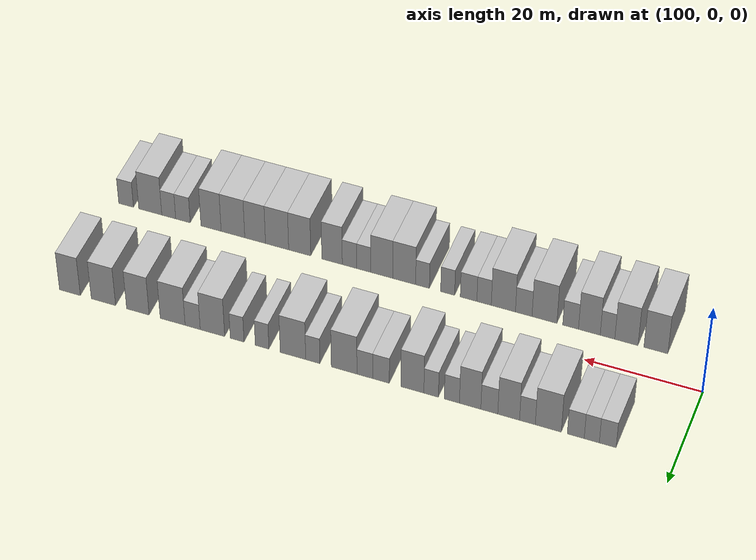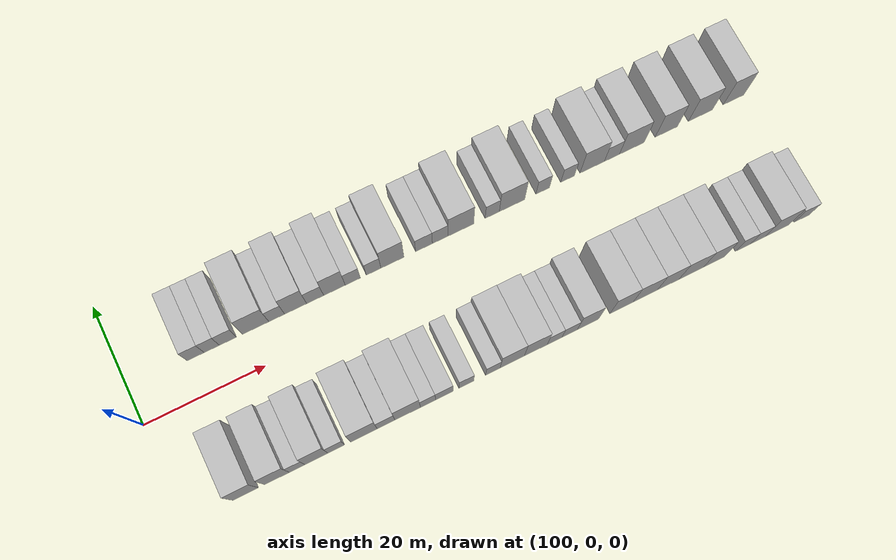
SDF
<sdf version="1.6">
 <world name="default">
  <model name="building_26">
   <static>1</static>
   <pose>111.0594 11.0000 0 0.000000 0.000000 1.570796</pose>
   <link name="link">
    <pose>0 0 3.00 0 0 0</pose>
    <collision name="collision"><geometry><box><size>10.0000 2.7994 6.0000</size></box></geometry></collision>
    <visual name="visual">
     <cast_shadows>0</cast_shadows>
     <geometry><box><size>10.0000 2.7994 6.0000</size></box></geometry>
     <material>
      <script>
       <uri>model://HANNAS_wall/materials/scripts</uri>
       <uri>model://HANNAS_wall/materials/textures</uri>
       <name>vrc/HANNAS_wall</name>
      </script>
     </material>
    </visual>
   </link>
  </model>
  <model name="building_27">
   <static>1</static>
   <pose>113.7172 11.0000 0 0.000000 0.000000 1.570796</pose>
   <link name="link">
    <pose>0 0 3.00 0 0 0</pose>
    <collision name="collision"><geometry><box><size>10.0000 2.5162 6.0000</size></box></geometry></collision>
    <visual name="visual">
     <cast_shadows>0</cast_shadows>
     <geometry><box><size>10.0000 2.5162 6.0000</size></box></geometry>
     <material>
      <script>
       <uri>model://HANNAS_wall/materials/scripts</uri>
       <uri>model://HANNAS_wall/materials/textures</uri>
       <name>vrc/HANNAS_wall</name>
      </script>
     </material>
    </visual>
   </link>
  </model>
  <model name="building_28">
   <static>1</static>
   <pose>116.3857 11.0000 0 0.000000 0.000000 1.570796</pose>
   <link name="link">
    <pose>0 0 3.00 0 0 0</pose>
    <collision name="collision"><geometry><box><size>10.0000 2.8208 6.0000</size></box></geometry></collision>
    <visual name="visual">
     <cast_shadows>0</cast_shadows>
     <geometry><box><size>10.0000 2.8208 6.0000</size></box></geometry>
     <material>
      <script>
       <uri>model://HANNAS_wall/materials/scripts</uri>
       <uri>model://HANNAS_wall/materials/textures</uri>
       <name>vrc/HANNAS_wall</name>
      </script>
     </material>
    </visual>
   </link>
  </model>
  <model name="building_29">
   <static>1</static>
   <pose>120.9853 11.0000 0 0.000000 0.000000 1.570796</pose>
   <link name="link">
    <pose>0 0 4.50 0 0 0</pose>
    <collision name="collision"><geometry><box><size>10.0000 4.3785 9.0000</size></box></geometry></collision>
    <visual name="visual">
     <cast_shadows>0</cast_shadows>
     <geometry><box><size>10.0000 4.3785 9.0000</size></box></geometry>
     <material>
      <script>
       <uri>model://HANNAS_wall/materials/scripts</uri>
       <uri>model://HANNAS_wall/materials/textures</uri>
       <name>vrc/HANNAS_wall</name>
      </script>
     </material>
    </visual>
   </link>
  </model>
  <model name="building_30">
   <static>1</static>
   <pose>124.4999 11.0000 0 0.000000 0.000000 1.570796</pose>
   <link name="link">
    <pose>0 0 3.00 0 0 0</pose>
    <collision name="collision"><geometry><box><size>10.0000 2.6507 6.0000</size></box></geometry></collision>
    <visual name="visual">
     <cast_shadows>0</cast_shadows>
     <geometry><box><size>10.0000 2.6507 6.0000</size></box></geometry>
     <material>
      <script>
       <uri>model://HANNAS_wall/materials/scripts</uri>
       <uri>model://HANNAS_wall/materials/textures</uri>
       <name>vrc/HANNAS_wall</name>
      </script>
     </material>
    </visual>
   </link>
  </model>
  <model name="building_31">
   <static>1</static>
   <pose>127.6629 11.0000 0 0.000000 0.000000 1.570796</pose>
   <link name="link">
    <pose>0 0 4.50 0 0 0</pose>
    <collision name="collision"><geometry><box><size>10.0000 3.6754 9.0000</size></box></geometry></collision>
    <visual name="visual">
     <cast_shadows>0</cast_shadows>
     <geometry><box><size>10.0000 3.6754 9.0000</size></box></geometry>
     <material>
      <script>
       <uri>model://HANNAS_wall/materials/scripts</uri>
       <uri>model://HANNAS_wall/materials/textures</uri>
       <name>vrc/HANNAS_wall</name>
      </script>
     </material>
    </visual>
   </link>
  </model>
  <model name="building_32">
   <static>1</static>
   <pose>130.9396 11.0000 0 0.000000 0.000000 1.570796</pose>
   <link name="link">
    <pose>0 0 3.00 0 0 0</pose>
    <collision name="collision"><geometry><box><size>10.0000 2.8780 6.0000</size></box></geometry></collision>
    <visual name="visual">
     <cast_shadows>0</cast_shadows>
     <geometry><box><size>10.0000 2.8780 6.0000</size></box></geometry>
     <material>
      <script>
       <uri>model://HANNAS_wall/materials/scripts</uri>
       <uri>model://HANNAS_wall/materials/textures</uri>
       <name>vrc/HANNAS_wall</name>
      </script>
     </material>
    </visual>
   </link>
  </model>
  <model name="building_33">
   <static>1</static>
   <pose>134.2009 11.0000 0 0.000000 0.000000 1.570796</pose>
   <link name="link">
    <pose>0 0 4.50 0 0 0</pose>
    <collision name="collision"><geometry><box><size>10.0000 3.6445 9.0000</size></box></geometry></collision>
    <visual name="visual">
     <cast_shadows>0</cast_shadows>
     <geometry><box><size>10.0000 3.6445 9.0000</size></box></geometry>
     <material>
      <script>
       <uri>model://HANNAS_wall/materials/scripts</uri>
       <uri>model://HANNAS_wall/materials/textures</uri>
       <name>vrc/HANNAS_wall</name>
      </script>
     </material>
    </visual>
   </link>
  </model>
  <model name="building_34">
   <static>1</static>
   <pose>137.3183 11.0000 0 0.000000 0.000000 1.570796</pose>
   <link name="link">
    <pose>0 0 3.00 0 0 0</pose>
    <collision name="collision"><geometry><box><size>10.0000 2.5903 6.0000</size></box></geometry></collision>
    <visual name="visual">
     <cast_shadows>0</cast_shadows>
     <geometry><box><size>10.0000 2.5903 6.0000</size></box></geometry>
     <material>
      <script>
       <uri>model://HANNAS_wall/materials/scripts</uri>
       <uri>model://HANNAS_wall/materials/textures</uri>
       <name>vrc/HANNAS_wall</name>
      </script>
     </material>
    </visual>
   </link>
  </model>
  <model name="building_35">
   <static>1</static>
   <pose>140.8595 11.0000 0 0.000000 0.000000 1.570796</pose>
   <link name="link">
    <pose>0 0 3.00 0 0 0</pose>
    <collision name="collision"><geometry><box><size>10.0000 2.4921 6.0000</size></box></geometry></collision>
    <visual name="visual">
     <cast_shadows>0</cast_shadows>
     <geometry><box><size>10.0000 2.4921 6.0000</size></box></geometry>
     <material>
      <script>
       <uri>model://HANNAS_wall/materials/scripts</uri>
       <uri>model://HANNAS_wall/materials/textures</uri>
       <name>vrc/HANNAS_wall</name>
      </script>
     </material>
    </visual>
   </link>
  </model>
  <model name="building_36">
   <static>1</static>
   <pose>144.0839 11.0000 0 0.000000 0.000000 1.570796</pose>
   <link name="link">
    <pose>0 0 4.50 0 0 0</pose>
    <collision name="collision"><geometry><box><size>10.0000 3.9569 9.0000</size></box></geometry></collision>
    <visual name="visual">
     <cast_shadows>0</cast_shadows>
     <geometry><box><size>10.0000 3.9569 9.0000</size></box></geometry>
     <material>
      <script>
       <uri>model://HANNAS_wall/materials/scripts</uri>
       <uri>model://HANNAS_wall/materials/textures</uri>
       <name>vrc/HANNAS_wall</name>
      </script>
     </material>
    </visual>
   </link>
  </model>
  <model name="building_37">
   <static>1</static>
   <pose>149.5078 11.0000 0 0.000000 0.000000 1.570796</pose>
   <link name="link">
    <pose>0 0 3.00 0 0 0</pose>
    <collision name="collision"><geometry><box><size>10.0000 2.8908 6.0000</size></box></geometry></collision>
    <visual name="visual">
     <cast_shadows>0</cast_shadows>
     <geometry><box><size>10.0000 2.8908 6.0000</size></box></geometry>
     <material>
      <script>
       <uri>model://HANNAS_wall/materials/scripts</uri>
       <uri>model://HANNAS_wall/materials/textures</uri>
       <name>vrc/HANNAS_wall</name>
      </script>
     </material>
    </visual>
   </link>
  </model>
  <model name="building_38">
   <static>1</static>
   <pose>152.3108 11.0000 0 0.000000 0.000000 1.570796</pose>
   <link name="link">
    <pose>0 0 3.00 0 0 0</pose>
    <collision name="collision"><geometry><box><size>10.0000 2.7152 6.0000</size></box></geometry></collision>
    <visual name="visual">
     <cast_shadows>0</cast_shadows>
     <geometry><box><size>10.0000 2.7152 6.0000</size></box></geometry>
     <material>
      <script>
       <uri>model://HANNAS_wall/materials/scripts</uri>
       <uri>model://HANNAS_wall/materials/textures</uri>
       <name>vrc/HANNAS_wall</name>
      </script>
     </material>
    </visual>
   </link>
  </model>
  <model name="building_39">
   <static>1</static>
   <pose>155.8981 11.0000 0 0.000000 0.000000 1.570796</pose>
   <link name="link">
    <pose>0 0 4.50 0 0 0</pose>
    <collision name="collision"><geometry><box><size>10.0000 4.4595 9.0000</size></box></geometry></collision>
    <visual name="visual">
     <cast_shadows>0</cast_shadows>
     <geometry><box><size>10.0000 4.4595 9.0000</size></box></geometry>
     <material>
      <script>
       <uri>model://HANNAS_wall/materials/scripts</uri>
       <uri>model://HANNAS_wall/materials/textures</uri>
       <name>vrc/HANNAS_wall</name>
      </script>
     </material>
    </visual>
   </link>
  </model>
  <model name="building_40">
   <static>1</static>
   <pose>161.3708 11.0000 0 0.000000 0.000000 1.570796</pose>
   <link name="link">
    <pose>0 0 3.00 0 0 0</pose>
    <collision name="collision"><geometry><box><size>10.0000 2.4860 6.0000</size></box></geometry></collision>
    <visual name="visual">
     <cast_shadows>0</cast_shadows>
     <geometry><box><size>10.0000 2.4860 6.0000</size></box></geometry>
     <material>
      <script>
       <uri>model://HANNAS_wall/materials/scripts</uri>
       <uri>model://HANNAS_wall/materials/textures</uri>
       <name>vrc/HANNAS_wall</name>
      </script>
     </material>
    </visual>
   </link>
  </model>
  <model name="building_41">
   <static>1</static>
   <pose>164.8539 11.0000 0 0.000000 0.000000 1.570796</pose>
   <link name="link">
    <pose>0 0 4.50 0 0 0</pose>
    <collision name="collision"><geometry><box><size>10.0000 4.4803 9.0000</size></box></geometry></collision>
    <visual name="visual">
     <cast_shadows>0</cast_shadows>
     <geometry><box><size>10.0000 4.4803 9.0000</size></box></geometry>
     <material>
      <script>
       <uri>model://HANNAS_wall/materials/scripts</uri>
       <uri>model://HANNAS_wall/materials/textures</uri>
       <name>vrc/HANNAS_wall</name>
      </script>
     </material>
    </visual>
   </link>
  </model>
  <model name="building_42">
   <static>1</static>
   <pose>170.2980 11.0000 0 0.000000 0.000000 1.570796</pose>
   <link name="link">
    <pose>0 0 3.00 0 0 0</pose>
    <collision name="collision"><geometry><box><size>10.0000 2.4078 6.0000</size></box></geometry></collision>
    <visual name="visual">
     <cast_shadows>0</cast_shadows>
     <geometry><box><size>10.0000 2.4078 6.0000</size></box></geometry>
     <material>
      <script>
       <uri>model://HANNAS_wall/materials/scripts</uri>
       <uri>model://HANNAS_wall/materials/textures</uri>
       <name>vrc/HANNAS_wall</name>
      </script>
     </material>
    </visual>
   </link>
  </model>
  <model name="building_43">
   <static>1</static>
   <pose>174.7209 11.0000 0 0.000000 0.000000 1.570796</pose>
   <link name="link">
    <pose>0 0 3.00 0 0 0</pose>
    <collision name="collision"><geometry><box><size>10.0000 2.4381 6.0000</size></box></geometry></collision>
    <visual name="visual">
     <cast_shadows>0</cast_shadows>
     <geometry><box><size>10.0000 2.4381 6.0000</size></box></geometry>
     <material>
      <script>
       <uri>model://HANNAS_wall/materials/scripts</uri>
       <uri>model://HANNAS_wall/materials/textures</uri>
       <name>vrc/HANNAS_wall</name>
      </script>
     </material>
    </visual>
   </link>
  </model>
  <model name="building_44">
   <static>1</static>
   <pose>179.1229 11.0000 0 0.000000 0.000000 1.570796</pose>
   <link name="link">
    <pose>0 0 4.50 0 0 0</pose>
    <collision name="collision"><geometry><box><size>10.0000 4.3658 9.0000</size></box></geometry></collision>
    <visual name="visual">
     <cast_shadows>0</cast_shadows>
     <geometry><box><size>10.0000 4.3658 9.0000</size></box></geometry>
     <material>
      <script>
       <uri>model://HANNAS_wall/materials/scripts</uri>
       <uri>model://HANNAS_wall/materials/textures</uri>
       <name>vrc/HANNAS_wall</name>
      </script>
     </material>
    </visual>
   </link>
  </model>
  <model name="building_45">
   <static>1</static>
   <pose>182.6633 11.0000 0 0.000000 0.000000 1.570796</pose>
   <link name="link">
    <pose>0 0 3.00 0 0 0</pose>
    <collision name="collision"><geometry><box><size>10.0000 2.7148 6.0000</size></box></geometry></collision>
    <visual name="visual">
     <cast_shadows>0</cast_shadows>
     <geometry><box><size>10.0000 2.7148 6.0000</size></box></geometry>
     <material>
      <script>
       <uri>model://HANNAS_wall/materials/scripts</uri>
       <uri>model://HANNAS_wall/materials/textures</uri>
       <name>vrc/HANNAS_wall</name>
      </script>
     </material>
    </visual>
   </link>
  </model>
  <model name="building_46">
   <static>1</static>
   <pose>186.2597 11.0000 0 0.000000 0.000000 1.570796</pose>
   <link name="link">
    <pose>0 0 4.50 0 0 0</pose>
    <collision name="collision"><geometry><box><size>10.0000 4.4780 9.0000</size></box></geometry></collision>
    <visual name="visual">
     <cast_shadows>0</cast_shadows>
     <geometry><box><size>10.0000 4.4780 9.0000</size></box></geometry>
     <material>
      <script>
       <uri>model://HANNAS_wall/materials/scripts</uri>
       <uri>model://HANNAS_wall/materials/textures</uri>
       <name>vrc/HANNAS_wall</name>
      </script>
     </material>
    </visual>
   </link>
  </model>
  <model name="building_47">
   <static>1</static>
   <pose>192.5352 11.0000 0 0.000000 0.000000 1.570796</pose>
   <link name="link">
    <pose>0 0 4.50 0 0 0</pose>
    <collision name="collision"><geometry><box><size>10.0000 4.0730 9.0000</size></box></geometry></collision>
    <visual name="visual">
     <cast_shadows>0</cast_shadows>
     <geometry><box><size>10.0000 4.0730 9.0000</size></box></geometry>
     <material>
      <script>
       <uri>model://HANNAS_wall/materials/scripts</uri>
       <uri>model://HANNAS_wall/materials/textures</uri>
       <name>vrc/HANNAS_wall</name>
      </script>
     </material>
    </visual>
   </link>
  </model>
  <model name="building_48">
   <static>1</static>
   <pose>198.7893 11.0000 0 0.000000 0.000000 1.570796</pose>
   <link name="link">
    <pose>0 0 4.50 0 0 0</pose>
    <collision name="collision"><geometry><box><size>10.0000 4.4353 9.0000</size></box></geometry></collision>
    <visual name="visual">
     <cast_shadows>0</cast_shadows>
     <geometry><box><size>10.0000 4.4353 9.0000</size></box></geometry>
     <material>
      <script>
       <uri>model://HANNAS_wall/materials/scripts</uri>
       <uri>model://HANNAS_wall/materials/textures</uri>
       <name>vrc/HANNAS_wall</name>
      </script>
     </material>
    </visual>
   </link>
  </model>
  <model name="building_49">
   <static>1</static>
   <pose>204.9103 11.0000 0 0.000000 0.000000 1.570796</pose>
   <link name="link">
    <pose>0 0 4.50 0 0 0</pose>
    <collision name="collision"><geometry><box><size>10.0000 3.8065 9.0000</size></box></geometry></collision>
    <visual name="visual">
     <cast_shadows>0</cast_shadows>
     <geometry><box><size>10.0000 3.8065 9.0000</size></box></geometry>
     <material>
      <script>
       <uri>model://HANNAS_wall/materials/scripts</uri>
       <uri>model://HANNAS_wall/materials/textures</uri>
       <name>vrc/HANNAS_wall</name>
      </script>
     </material>
    </visual>
   </link>
  </model>
  <model name="building_75">
   <static>1</static>
   <pose>109.6816 -11.0000 0 0.000000 0.000000 1.570796</pose>
   <link name="link">
    <pose>0 0 4.50 0 0 0</pose>
    <collision name="collision"><geometry><box><size>10.0000 4.0890 9.0000</size></box></geometry></collision>
    <visual name="visual">
     <cast_shadows>0</cast_shadows>
     <geometry><box><size>10.0000 4.0890 9.0000</size></box></geometry>
     <material>
      <script>
       <uri>model://HANNAS_wall/materials/scripts</uri>
       <uri>model://HANNAS_wall/materials/textures</uri>
       <name>vrc/HANNAS_wall</name>
      </script>
     </material>
    </visual>
   </link>
  </model>
  <model name="building_76">
   <static>1</static>
   <pose>114.7180 -11.0000 0 0.000000 0.000000 1.570796</pose>
   <link name="link">
    <pose>0 0 4.50 0 0 0</pose>
    <collision name="collision"><geometry><box><size>10.0000 3.9837 9.0000</size></box></geometry></collision>
    <visual name="visual">
     <cast_shadows>0</cast_shadows>
     <geometry><box><size>10.0000 3.9837 9.0000</size></box></geometry>
     <material>
      <script>
       <uri>model://HANNAS_wall/materials/scripts</uri>
       <uri>model://HANNAS_wall/materials/textures</uri>
       <name>vrc/HANNAS_wall</name>
      </script>
     </material>
    </visual>
   </link>
  </model>
  <model name="building_77">
   <static>1</static>
   <pose>117.9638 -11.0000 0 0.000000 0.000000 1.570796</pose>
   <link name="link">
    <pose>0 0 3.00 0 0 0</pose>
    <collision name="collision"><geometry><box><size>10.0000 2.5079 6.0000</size></box></geometry></collision>
    <visual name="visual">
     <cast_shadows>0</cast_shadows>
     <geometry><box><size>10.0000 2.5079 6.0000</size></box></geometry>
     <material>
      <script>
       <uri>model://HANNAS_wall/materials/scripts</uri>
       <uri>model://HANNAS_wall/materials/textures</uri>
       <name>vrc/HANNAS_wall</name>
      </script>
     </material>
    </visual>
   </link>
  </model>
  <model name="building_78">
   <static>1</static>
   <pose>121.0917 -11.0000 0 0.000000 0.000000 1.570796</pose>
   <link name="link">
    <pose>0 0 4.50 0 0 0</pose>
    <collision name="collision"><geometry><box><size>10.0000 3.7479 9.0000</size></box></geometry></collision>
    <visual name="visual">
     <cast_shadows>0</cast_shadows>
     <geometry><box><size>10.0000 3.7479 9.0000</size></box></geometry>
     <material>
      <script>
       <uri>model://HANNAS_wall/materials/scripts</uri>
       <uri>model://HANNAS_wall/materials/textures</uri>
       <name>vrc/HANNAS_wall</name>
      </script>
     </material>
    </visual>
   </link>
  </model>
  <model name="building_79">
   <static>1</static>
   <pose>124.3284 -11.0000 0 0.000000 0.000000 1.570796</pose>
   <link name="link">
    <pose>0 0 3.00 0 0 0</pose>
    <collision name="collision"><geometry><box><size>10.0000 2.7254 6.0000</size></box></geometry></collision>
    <visual name="visual">
     <cast_shadows>0</cast_shadows>
     <geometry><box><size>10.0000 2.7254 6.0000</size></box></geometry>
     <material>
      <script>
       <uri>model://HANNAS_wall/materials/scripts</uri>
       <uri>model://HANNAS_wall/materials/textures</uri>
       <name>vrc/HANNAS_wall</name>
      </script>
     </material>
    </visual>
   </link>
  </model>
  <model name="building_80">
   <static>1</static>
   <pose>128.8610 -11.0000 0 0.000000 0.000000 1.570796</pose>
   <link name="link">
    <pose>0 0 4.50 0 0 0</pose>
    <collision name="collision"><geometry><box><size>10.0000 4.3398 9.0000</size></box></geometry></collision>
    <visual name="visual">
     <cast_shadows>0</cast_shadows>
     <geometry><box><size>10.0000 4.3398 9.0000</size></box></geometry>
     <material>
      <script>
       <uri>model://HANNAS_wall/materials/scripts</uri>
       <uri>model://HANNAS_wall/materials/textures</uri>
       <name>vrc/HANNAS_wall</name>
      </script>
     </material>
    </visual>
   </link>
  </model>
  <model name="building_81">
   <static>1</static>
   <pose>132.4812 -11.0000 0 0.000000 0.000000 1.570796</pose>
   <link name="link">
    <pose>0 0 3.00 0 0 0</pose>
    <collision name="collision"><geometry><box><size>10.0000 2.9006 6.0000</size></box></geometry></collision>
    <visual name="visual">
     <cast_shadows>0</cast_shadows>
     <geometry><box><size>10.0000 2.9006 6.0000</size></box></geometry>
     <material>
      <script>
       <uri>model://HANNAS_wall/materials/scripts</uri>
       <uri>model://HANNAS_wall/materials/textures</uri>
       <name>vrc/HANNAS_wall</name>
      </script>
     </material>
    </visual>
   </link>
  </model>
  <model name="building_82">
   <static>1</static>
   <pose>136.0506 -11.0000 0 0.000000 0.000000 1.570796</pose>
   <link name="link">
    <pose>0 0 4.50 0 0 0</pose>
    <collision name="collision"><geometry><box><size>10.0000 4.2382 9.0000</size></box></geometry></collision>
    <visual name="visual">
     <cast_shadows>0</cast_shadows>
     <geometry><box><size>10.0000 4.2382 9.0000</size></box></geometry>
     <material>
      <script>
       <uri>model://HANNAS_wall/materials/scripts</uri>
       <uri>model://HANNAS_wall/materials/textures</uri>
       <name>vrc/HANNAS_wall</name>
      </script>
     </material>
    </visual>
   </link>
  </model>
  <model name="building_83">
   <static>1</static>
   <pose>139.4349 -11.0000 0 0.000000 0.000000 1.570796</pose>
   <link name="link">
    <pose>0 0 3.00 0 0 0</pose>
    <collision name="collision"><geometry><box><size>10.0000 2.5304 6.0000</size></box></geometry></collision>
    <visual name="visual">
     <cast_shadows>0</cast_shadows>
     <geometry><box><size>10.0000 2.5304 6.0000</size></box></geometry>
     <material>
      <script>
       <uri>model://HANNAS_wall/materials/scripts</uri>
       <uri>model://HANNAS_wall/materials/textures</uri>
       <name>vrc/HANNAS_wall</name>
      </script>
     </material>
    </visual>
   </link>
  </model>
  <model name="building_84">
   <static>1</static>
   <pose>142.1581 -11.0000 0 0.000000 0.000000 1.570796</pose>
   <link name="link">
    <pose>0 0 3.00 0 0 0</pose>
    <collision name="collision"><geometry><box><size>10.0000 2.9161 6.0000</size></box></geometry></collision>
    <visual name="visual">
     <cast_shadows>0</cast_shadows>
     <geometry><box><size>10.0000 2.9161 6.0000</size></box></geometry>
     <material>
      <script>
       <uri>model://HANNAS_wall/materials/scripts</uri>
       <uri>model://HANNAS_wall/materials/textures</uri>
       <name>vrc/HANNAS_wall</name>
      </script>
     </material>
    </visual>
   </link>
  </model>
  <model name="building_85">
   <static>1</static>
   <pose>145.8548 -11.0000 0 0.000000 0.000000 1.570796</pose>
   <link name="link">
    <pose>0 0 3.00 0 0 0</pose>
    <collision name="collision"><geometry><box><size>10.0000 2.4774 6.0000</size></box></geometry></collision>
    <visual name="visual">
     <cast_shadows>0</cast_shadows>
     <geometry><box><size>10.0000 2.4774 6.0000</size></box></geometry>
     <material>
      <script>
       <uri>model://HANNAS_wall/materials/scripts</uri>
       <uri>model://HANNAS_wall/materials/textures</uri>
       <name>vrc/HANNAS_wall</name>
      </script>
     </material>
    </visual>
   </link>
  </model>
  <model name="building_86">
   <static>1</static>
   <pose>150.3157 -11.0000 0 0.000000 0.000000 1.570796</pose>
   <link name="link">
    <pose>0 0 3.00 0 0 0</pose>
    <collision name="collision"><geometry><box><size>10.0000 2.4442 6.0000</size></box></geometry></collision>
    <visual name="visual">
     <cast_shadows>0</cast_shadows>
     <geometry><box><size>10.0000 2.4442 6.0000</size></box></geometry>
     <material>
      <script>
       <uri>model://HANNAS_wall/materials/scripts</uri>
       <uri>model://HANNAS_wall/materials/textures</uri>
       <name>vrc/HANNAS_wall</name>
      </script>
     </material>
    </visual>
   </link>
  </model>
  <model name="building_87">
   <static>1</static>
   <pose>153.5936 -11.0000 0 0.000000 0.000000 1.570796</pose>
   <link name="link">
    <pose>0 0 4.50 0 0 0</pose>
    <collision name="collision"><geometry><box><size>10.0000 4.1116 9.0000</size></box></geometry></collision>
    <visual name="visual">
     <cast_shadows>0</cast_shadows>
     <geometry><box><size>10.0000 4.1116 9.0000</size></box></geometry>
     <material>
      <script>
       <uri>model://HANNAS_wall/materials/scripts</uri>
       <uri>model://HANNAS_wall/materials/textures</uri>
       <name>vrc/HANNAS_wall</name>
      </script>
     </material>
    </visual>
   </link>
  </model>
  <model name="building_88">
   <static>1</static>
   <pose>157.6100 -11.0000 0 0.000000 0.000000 1.570796</pose>
   <link name="link">
    <pose>0 0 4.50 0 0 0</pose>
    <collision name="collision"><geometry><box><size>10.0000 3.9211 9.0000</size></box></geometry></collision>
    <visual name="visual">
     <cast_shadows>0</cast_shadows>
     <geometry><box><size>10.0000 3.9211 9.0000</size></box></geometry>
     <material>
      <script>
       <uri>model://HANNAS_wall/materials/scripts</uri>
       <uri>model://HANNAS_wall/materials/textures</uri>
       <name>vrc/HANNAS_wall</name>
      </script>
     </material>
    </visual>
   </link>
  </model>
  <model name="building_89">
   <static>1</static>
   <pose>160.8278 -11.0000 0 0.000000 0.000000 1.570796</pose>
   <link name="link">
    <pose>0 0 3.00 0 0 0</pose>
    <collision name="collision"><geometry><box><size>10.0000 2.5146 6.0000</size></box></geometry></collision>
    <visual name="visual">
     <cast_shadows>0</cast_shadows>
     <geometry><box><size>10.0000 2.5146 6.0000</size></box></geometry>
     <material>
      <script>
       <uri>model://HANNAS_wall/materials/scripts</uri>
       <uri>model://HANNAS_wall/materials/textures</uri>
       <name>vrc/HANNAS_wall</name>
      </script>
     </material>
    </visual>
   </link>
  </model>
  <model name="building_90">
   <static>1</static>
   <pose>163.3924 -11.0000 0 0.000000 0.000000 1.570796</pose>
   <link name="link">
    <pose>0 0 3.00 0 0 0</pose>
    <collision name="collision"><geometry><box><size>10.0000 2.6145 6.0000</size></box></geometry></collision>
    <visual name="visual">
     <cast_shadows>0</cast_shadows>
     <geometry><box><size>10.0000 2.6145 6.0000</size></box></geometry>
     <material>
      <script>
       <uri>model://HANNAS_wall/materials/scripts</uri>
       <uri>model://HANNAS_wall/materials/textures</uri>
       <name>vrc/HANNAS_wall</name>
      </script>
     </material>
    </visual>
   </link>
  </model>
  <model name="building_91">
   <static>1</static>
   <pose>166.5442 -11.0000 0 0.000000 0.000000 1.570796</pose>
   <link name="link">
    <pose>0 0 4.50 0 0 0</pose>
    <collision name="collision"><geometry><box><size>10.0000 3.6891 9.0000</size></box></geometry></collision>
    <visual name="visual">
     <cast_shadows>0</cast_shadows>
     <geometry><box><size>10.0000 3.6891 9.0000</size></box></geometry>
     <material>
      <script>
       <uri>model://HANNAS_wall/materials/scripts</uri>
       <uri>model://HANNAS_wall/materials/textures</uri>
       <name>vrc/HANNAS_wall</name>
      </script>
     </material>
    </visual>
   </link>
  </model>
  <model name="building_92">
   <static>1</static>
   <pose>172.4028 -11.0000 0 0.000000 0.000000 1.570796</pose>
   <link name="link">
    <pose>0 0 4.50 0 0 0</pose>
    <collision name="collision"><geometry><box><size>10.0000 4.0280 9.0000</size></box></geometry></collision>
    <visual name="visual">
     <cast_shadows>0</cast_shadows>
     <geometry><box><size>10.0000 4.0280 9.0000</size></box></geometry>
     <material>
      <script>
       <uri>model://HANNAS_wall/materials/scripts</uri>
       <uri>model://HANNAS_wall/materials/textures</uri>
       <name>vrc/HANNAS_wall</name>
      </script>
     </material>
    </visual>
   </link>
  </model>
  <model name="building_93">
   <static>1</static>
   <pose>176.5312 -11.0000 0 0.000000 0.000000 1.570796</pose>
   <link name="link">
    <pose>0 0 4.50 0 0 0</pose>
    <collision name="collision"><geometry><box><size>10.0000 4.2289 9.0000</size></box></geometry></collision>
    <visual name="visual">
     <cast_shadows>0</cast_shadows>
     <geometry><box><size>10.0000 4.2289 9.0000</size></box></geometry>
     <material>
      <script>
       <uri>model://HANNAS_wall/materials/scripts</uri>
       <uri>model://HANNAS_wall/materials/textures</uri>
       <name>vrc/HANNAS_wall</name>
      </script>
     </material>
    </visual>
   </link>
  </model>
  <model name="building_94">
   <static>1</static>
   <pose>180.5487 -11.0000 0 0.000000 0.000000 1.570796</pose>
   <link name="link">
    <pose>0 0 4.50 0 0 0</pose>
    <collision name="collision"><geometry><box><size>10.0000 3.8060 9.0000</size></box></geometry></collision>
    <visual name="visual">
     <cast_shadows>0</cast_shadows>
     <geometry><box><size>10.0000 3.8060 9.0000</size></box></geometry>
     <material>
      <script>
       <uri>model://HANNAS_wall/materials/scripts</uri>
       <uri>model://HANNAS_wall/materials/textures</uri>
       <name>vrc/HANNAS_wall</name>
      </script>
     </material>
    </visual>
   </link>
  </model>
  <model name="building_95">
   <static>1</static>
   <pose>184.6282 -11.0000 0 0.000000 0.000000 1.570796</pose>
   <link name="link">
    <pose>0 0 4.50 0 0 0</pose>
    <collision name="collision"><geometry><box><size>10.0000 4.3531 9.0000</size></box></geometry></collision>
    <visual name="visual">
     <cast_shadows>0</cast_shadows>
     <geometry><box><size>10.0000 4.3531 9.0000</size></box></geometry>
     <material>
      <script>
       <uri>model://HANNAS_wall/materials/scripts</uri>
       <uri>model://HANNAS_wall/materials/textures</uri>
       <name>vrc/HANNAS_wall</name>
      </script>
     </material>
    </visual>
   </link>
  </model>
  <model name="building_96">
   <static>1</static>
   <pose>188.6700 -11.0000 0 0.000000 0.000000 1.570796</pose>
   <link name="link">
    <pose>0 0 4.50 0 0 0</pose>
    <collision name="collision"><geometry><box><size>10.0000 3.7304 9.0000</size></box></geometry></collision>
    <visual name="visual">
     <cast_shadows>0</cast_shadows>
     <geometry><box><size>10.0000 3.7304 9.0000</size></box></geometry>
     <material>
      <script>
       <uri>model://HANNAS_wall/materials/scripts</uri>
       <uri>model://HANNAS_wall/materials/textures</uri>
       <name>vrc/HANNAS_wall</name>
      </script>
     </material>
    </visual>
   </link>
  </model>
  <model name="building_97">
   <static>1</static>
   <pose>193.8860 -11.0000 0 0.000000 0.000000 1.570796</pose>
   <link name="link">
    <pose>0 0 3.00 0 0 0</pose>
    <collision name="collision"><geometry><box><size>10.0000 2.7015 6.0000</size></box></geometry></collision>
    <visual name="visual">
     <cast_shadows>0</cast_shadows>
     <geometry><box><size>10.0000 2.7015 6.0000</size></box></geometry>
     <material>
      <script>
       <uri>model://HANNAS_wall/materials/scripts</uri>
       <uri>model://HANNAS_wall/materials/textures</uri>
       <name>vrc/HANNAS_wall</name>
      </script>
     </material>
    </visual>
   </link>
  </model>
  <model name="building_98">
   <static>1</static>
   <pose>196.5307 -11.0000 0 0.000000 0.000000 1.570796</pose>
   <link name="link">
    <pose>0 0 3.00 0 0 0</pose>
    <collision name="collision"><geometry><box><size>10.0000 2.5880 6.0000</size></box></geometry></collision>
    <visual name="visual">
     <cast_shadows>0</cast_shadows>
     <geometry><box><size>10.0000 2.5880 6.0000</size></box></geometry>
     <material>
      <script>
       <uri>model://HANNAS_wall/materials/scripts</uri>
       <uri>model://HANNAS_wall/materials/textures</uri>
       <name>vrc/HANNAS_wall</name>
      </script>
     </material>
    </visual>
   </link>
  </model>
  <model name="building_99">
   <static>1</static>
   <pose>199.9733 -11.0000 0 0.000000 0.000000 1.570796</pose>
   <link name="link">
    <pose>0 0 4.50 0 0 0</pose>
    <collision name="collision"><geometry><box><size>10.0000 4.2973 9.0000</size></box></geometry></collision>
    <visual name="visual">
     <cast_shadows>0</cast_shadows>
     <geometry><box><size>10.0000 4.2973 9.0000</size></box></geometry>
     <material>
      <script>
       <uri>model://HANNAS_wall/materials/scripts</uri>
       <uri>model://HANNAS_wall/materials/textures</uri>
       <name>vrc/HANNAS_wall</name>
      </script>
     </material>
    </visual>
   </link>
  </model>
  <model name="building_100">
   <static>1</static>
   <pose>204.5045 -11.0000 0 0.000000 0.000000 1.570796</pose>
   <link name="link">
    <pose>0 0 3.00 0 0 0</pose>
    <collision name="collision"><geometry><box><size>10.0000 2.7652 6.0000</size></box></geometry></collision>
    <visual name="visual">
     <cast_shadows>0</cast_shadows>
     <geometry><box><size>10.0000 2.7652 6.0000</size></box></geometry>
     <material>
      <script>
       <uri>model://HANNAS_wall/materials/scripts</uri>
       <uri>model://HANNAS_wall/materials/textures</uri>
       <name>vrc/HANNAS_wall</name>
      </script>
     </material>
    </visual>
   </link>
  </model>
 </world>
</sdf>
